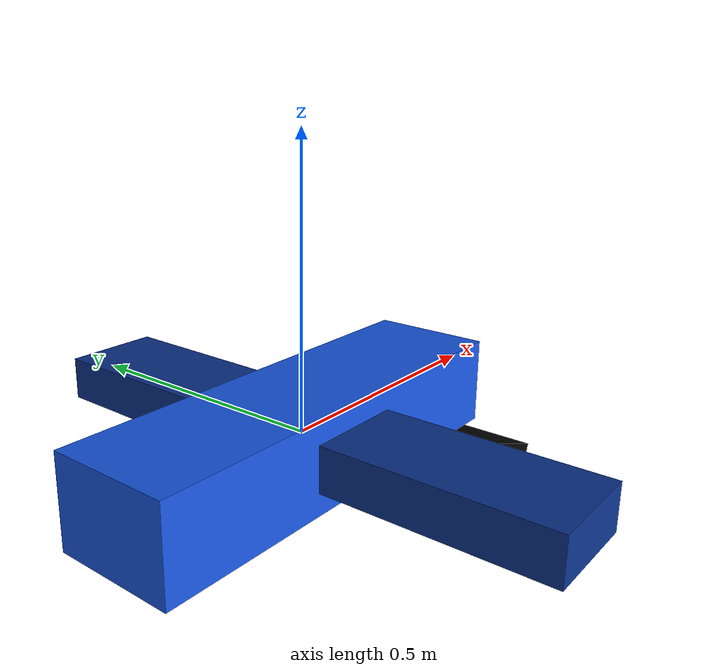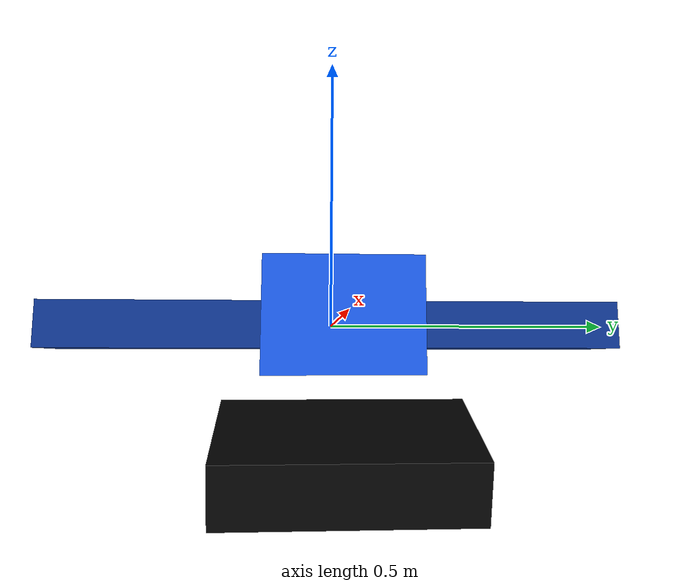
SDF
<?xml version="1.0"?>
<sdf version="1.7">
  <model name="simple_uav">
    <static>false</static>
    <link name="base_link">
      <gravity>false</gravity>
      <inertial>
        <mass>1.0</mass>
        <inertia>
          <ixx>0.02</ixx>
          <iyy>0.02</iyy>
          <izz>0.04</izz>
          <ixy>0.0</ixy>
          <ixz>0.0</ixz>
          <iyz>0.0</iyz>
        </inertia>
      </inertial>
      <visual name="body">
        <geometry>
          <box>
            <size>0.8 0.22 0.16</size>
          </box>
        </geometry>
        <material>
          <ambient>0.1 0.35 0.9 1</ambient>
          <diffuse>0.1 0.35 0.9 1</diffuse>
        </material>
      </visual>
      <visual name="left_arm">
        <geometry>
          <box>
            <size>0.18 1.0 0.08</size>
          </box>
        </geometry>
        <material>
          <ambient>0.05 0.2 0.55 1</ambient>
          <diffuse>0.05 0.2 0.55 1</diffuse>
        </material>
      </visual>
      <visual name="camera_frustum">
        <pose>0.45 0 -0.18 0 0.35 0</pose>
        <geometry>
          <box>
            <size>0.18 0.32 0.08</size>
          </box>
        </geometry>
        <material>
          <ambient>0.02 0.02 0.02 1</ambient>
          <diffuse>0.02 0.02 0.02 1</diffuse>
        </material>
      </visual>
      <collision name="collision">
        <geometry>
          <box>
            <size>0.9 1.05 0.2</size>
          </box>
        </geometry>
      </collision>
      <sensor name="front_camera" type="camera">
        <pose>0.48 0 -0.18 0 0.45 0</pose>
        <always_on>true</always_on>
        <update_rate>20</update_rate>
        <camera>
          <horizontal_fov>1.3962634</horizontal_fov>
          <image>
            <width>640</width>
            <height>480</height>
            <format>R8G8B8</format>
          </image>
          <clip>
            <near>0.1</near>
            <far>120</far>
          </clip>
        </camera>
      </sensor>
      <sensor name="imu_sensor" type="imu">
        <always_on>true</always_on>
        <update_rate>100</update_rate>
        <imu>
          <angular_velocity>
            <x>
              <noise type="gaussian">
                <mean>0</mean>
                <stddev>0.0002</stddev>
              </noise>
            </x>
            <y>
              <noise type="gaussian">
                <mean>0</mean>
                <stddev>0.0002</stddev>
              </noise>
            </y>
            <z>
              <noise type="gaussian">
                <mean>0</mean>
                <stddev>0.0002</stddev>
              </noise>
            </z>
          </angular_velocity>
          <linear_acceleration>
            <x>
              <noise type="gaussian">
                <mean>0</mean>
                <stddev>0.01</stddev>
              </noise>
            </x>
            <y>
              <noise type="gaussian">
                <mean>0</mean>
                <stddev>0.01</stddev>
              </noise>
            </y>
            <z>
              <noise type="gaussian">
                <mean>0</mean>
                <stddev>0.01</stddev>
              </noise>
            </z>
          </linear_acceleration>
        </imu>
      </sensor>
    </link>
  </model>
</sdf>
